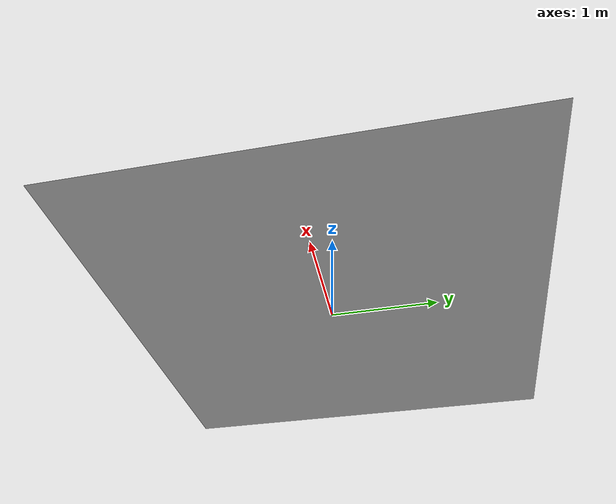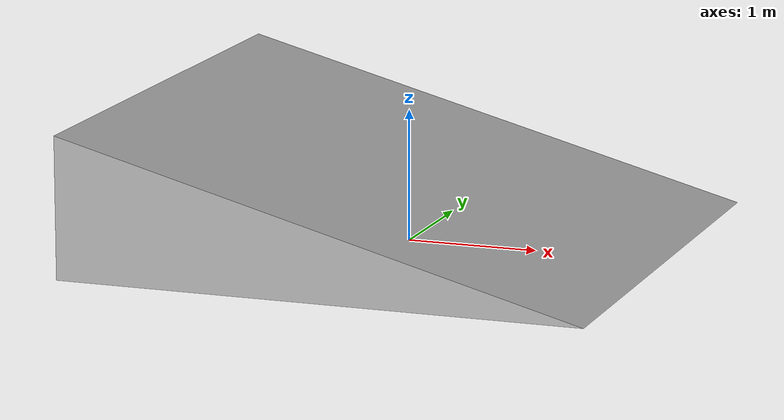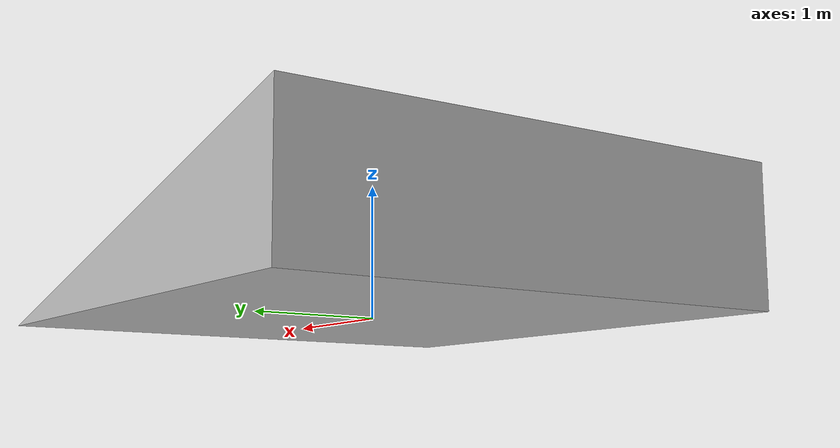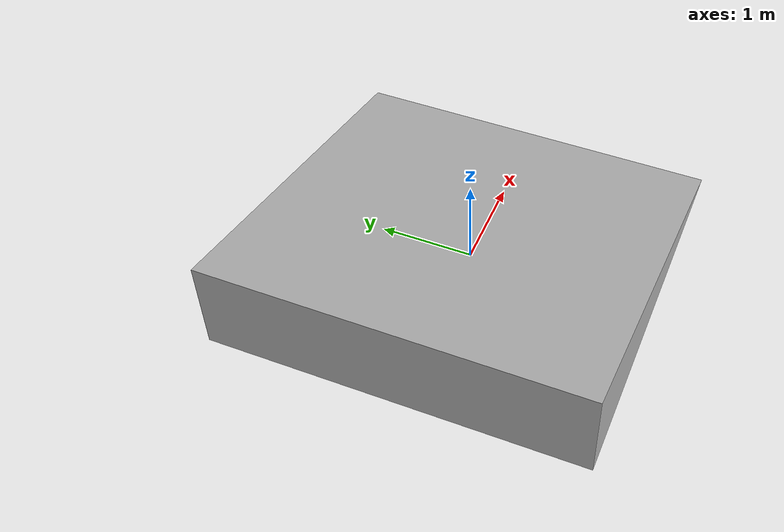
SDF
<?xml version="1.0" ?>
<sdf version="1.4">
	<model name="15_degree_ramp">
		<static>true</static>
		<link name="link">
			<pose>0 0 0 0 0 0</pose>
			<collision name="collision">
				<geometry>
					<mesh>
						<uri>model://ramp_45/mesh/ramp_45.dae</uri>
						<scale>2.0 2.0 0.5358</scale>
					</mesh>
				</geometry>
				<surface>
					<friction>
						<ode>
							<mu>10</mu>
							<mu2>10</mu2>
						</ode>
					</friction>
				</surface>
			</collision>
			<visual name="visual">
				<geometry>
					<mesh>
						<uri>model://ramp_45/mesh/ramp_45.dae</uri>
						<scale>2.0 2.0 0.5358</scale>
					</mesh>
				</geometry>
			</visual>
		</link>
	</model>
</sdf>
